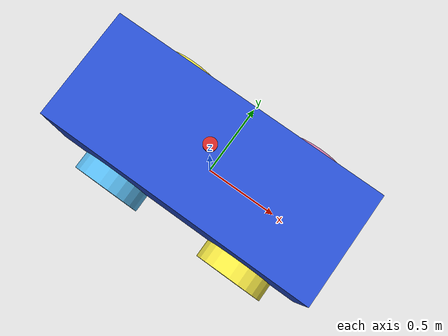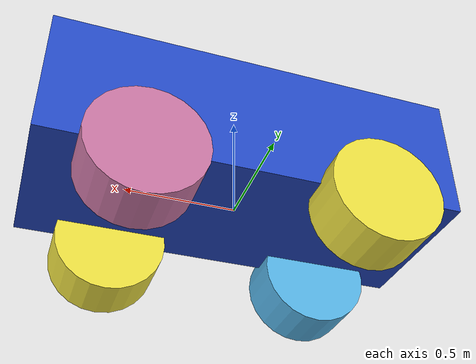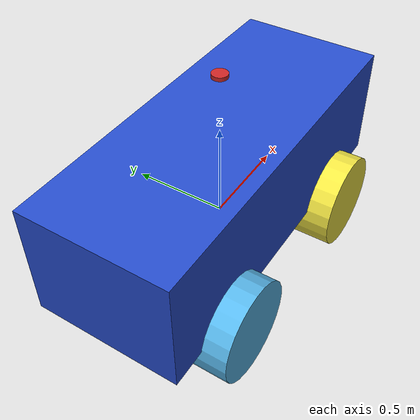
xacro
<?xml version="1.0" ?>
<robot name="tigra" xmlns:xacro="http://www.ros.org/wiki/xacro">

<xacro:property name="length" value="1.85" />
<xacro:property name="width" value="0.75" />
<xacro:property name="heigth" value="0.6" />
<xacro:property name="mass" value="420" />

<xacro:property name="wheel_width" value="0.25" />
<xacro:property name="wheel_radius" value="0.25" />
<xacro:property name="wheel_mass" value="20" />

<xacro:property name="wheelbase" value="1.0" />
<xacro:property name="half_wheelbase" value="${wheelbase/2}" />
<xacro:property name="track_width" value="0.8" />

<xacro:property name="wheel_turn_limit" value="${pi/4}"/>
<xacro:property name="degrees_30" value="${pi/6}"/>
<xacro:property name="mid_wheel_turn_limit" value="${degrees_30}"/>

<xacro:property name="springStiffness" value="125000" />
<xacro:property name="springReference" value="0" />

<xacro:property name="lidar_mass" value="0.1" />
<xacro:property name="lidar_height" value="0.02"/>
<xacro:property name="lidar_radius" value="0.04"/>

<!-- base_footprint - base_link on floor -->
<link name="base_footprint">
</link>
<gazebo reference="base_footprint"/>

<xacro:arg name="pub_tf" default="true" />

<!-- inertia -->
<xacro:macro name="null_inertial">
    <inertial>
      <mass value="1.0"/>
      <inertia ixx="0.01" ixy="0" ixz="0"
               iyy="0.01" iyz="0"
               izz="0.01"/>
    </inertial>
</xacro:macro>

<xacro:macro name="base_inertial"
               params="width length height mass *origin">
    <inertial>
      <xacro:insert_block name="origin"/>
      <mass value="${mass}"/>
      <inertia ixx="${mass * (width * width + height * height) / 12}"
               ixy="0" ixz="0"
               iyy="${mass * (length * length + height * height) / 12}"
               iyz="0"
               izz="${mass * (width * width + length * length) / 12}"/>
    </inertial>
</xacro:macro>

<xacro:macro name="wheel_inertial"
               params="r h mass *origin">
    <inertial>
      <xacro:insert_block name="origin"/>
      <mass value="${mass}"/>
      <inertia ixx="${mass / 12 * (3 * r * r + h * h)}" ixy="0.0" ixz="0.0"
               iyy="${mass / 12 * (3 * r * r + h * h)}" iyz="0.0"
               izz="${mass / 2 * r * r}" />
    </inertial>
</xacro:macro>

<!-- xacro base new -->
<link name="base_link">
    <visual>
     	<origin xyz="0 0 0" rpy="0 0 0" />
        <geometry>
            <box size="${length} ${width} ${heigth}"/>
        </geometry>
        <material name="blue"/>
    </visual>
    <collision name="base_collision">
    	<origin xyz="0 0 0" rpy="0 0 0" />
        <geometry>
            <box size="${length} ${width} ${heigth}"/>
        </geometry>
    </collision>
	<xacro:base_inertial
    width="${width}" length="${length}"
	height="${heigth}" mass="${mass}" >
    <origin xyz="0 0 0" rpy="0 0 0" />
	</xacro:base_inertial>
</link>

<!-- xacro wheel new -->
<xacro:macro name="wheels" params="name">
    <link name="${name}">
      <visual>
        <origin xyz="0 0 0" rpy="${pi/2} 0 0" />
        <geometry>
          <cylinder length="${wheel_width}" radius="${wheel_radius}"/>
        </geometry>
      </visual>
      <collision>
        <origin xyz="0 0 0" rpy="${pi/2} 0 0" />
        <geometry>
          <cylinder length="${wheel_width}" radius="${wheel_radius}"/>
        </geometry>
      </collision>
      <xacro:wheel_inertial
          r="${wheel_radius}" h="${wheel_width}"
          mass="${wheel_mass}" >
	  <origin xyz="0 0 0" rpy="${pi/2} 0 0" />
      </xacro:wheel_inertial>
    </link>
</xacro:macro>

<!-- speed -->
<xacro:macro name="speed_wheel" params="name base_name xyz ">
    <xacro:wheels name="wheel_${name}" />

    <gazebo reference="${name}_spring_joint">
    	<implicitSpringDamper>true</implicitSpringDamper>
    	<springStiffness>${springStiffness}</springStiffness>
    	<springReference>${springReference}</springReference>
    </gazebo>

    <joint name="${name}_spring_joint" type="prismatic">
    <limit lower="-0.1" upper="0.1" effort="0" velocity="0"/>
      <parent link="${base_name}"/>
      <child link="spring1_${name}"/>
	  <dynamics damping="0.0" friction="0.0"/>
	  <axis xyz="0 0 1"/>
    </joint>

    <link name="spring1_${name}">
      <xacro:null_inertial/>
    </link>

    <joint name="${name}_speed_joint" type="continuous">
      <parent link="spring1_${name}"/>
      <child link="wheel_${name}"/>
      <origin xyz="${xyz}" rpy="0 0 0"/>
      <axis xyz="0 1 0"/>
      <limit effort="500.0" velocity="10.0" />
    </joint>
</xacro:macro>

<!-- steer -->
<xacro:macro name="steer_wheel" params="name base_name xyz">
    <xacro:wheels name="wheel_${name}" />

    <gazebo reference="${name}_spring_joint">
    	<implicitSpringDamper>true</implicitSpringDamper>
    	<springStiffness>${springStiffness}</springStiffness>
    	<springReference>${springReference}</springReference>
    </gazebo>

    <joint name="${name}_spring_joint" type="prismatic">
    <limit lower="-0.1" upper="0.1" effort="0" velocity="0"/>
      <parent link="${base_name}"/>
      <child link="spring2_${name}"/>
	  <dynamics damping="0.0" friction="0.0"/>
	  <axis xyz="0 0 1"/>
    </joint>

    <link name="spring2_${name}">
      <xacro:null_inertial/>
    </link>

    <joint name="${name}_steer_joint" type="revolute">
      <limit lower="${-wheel_turn_limit}"
             upper="${wheel_turn_limit}"
             effort="1000" velocity="0"/>
      <parent link="spring2_${name}"/>
      <child link="steer_${name}"/>
      <origin xyz="${xyz}" rpy="0 0 0"/>
      <axis xyz="0 0 1"/>
    </joint>

     <link name="steer_${name}">
      <xacro:null_inertial/>
    </link>

    <joint name="${name}_speed_joint" type="continuous">
      <parent link="steer_${name}"/>
      <child link="wheel_${name}"/>
      <origin xyz="0 0 0" rpy="0 0 0"/>
      <axis xyz="0 1 0"/>
      <limit effort="500" velocity="10.0" />
    </joint>
</xacro:macro>

<!-- lidar -->
 <!-- Hokuyo Laser -->
  <link name="lidar_link">
    <xacro:wheel_inertial
        r="${lidar_radius}" h="${lidar_height}"
        mass="${lidar_mass}" >
      <origin xyz="0 0 0" rpy="0 0 0" />
    </xacro:wheel_inertial>
    <collision>
      <origin xyz="0 0 0" rpy="0 0 0"/>
      <geometry>
        <cylinder length="${lidar_height}" radius="${lidar_radius}"/>
      </geometry>
    </collision>

    <visual>
      <origin xyz="0 0 0" rpy="0 0 0"/>
      <geometry>
        <cylinder length="${lidar_height}" radius="${lidar_radius}"/>
      </geometry>
    </visual>
  </link>

  <gazebo reference="lidar_link">
    <material>Gazebo/Red</material>
    <sensor type="ray" name="head_hokuyo_sensor">
      <pose>0 0 0 0 0 0</pose>
      <visualize>true</visualize>
      <update_rate>40</update_rate>
      <ray>
        <scan>
          <horizontal>
            <samples>720</samples>
            <resolution>1</resolution>
            <min_angle>-3.14</min_angle>
            <max_angle>3.14</max_angle>
          </horizontal>
        </scan>
        <range>
          <min>0.10</min>
          <max>30.0</max>
          <resolution>0.01</resolution>
        </range>
        <noise>
          <type>gaussian</type>
          <mean>0.0</mean>
          <stddev>0.01</stddev>
        </noise>
      </ray>
      <plugin name="gazebo_ros_head_hokuyo_controller" filename="libgazebo_ros_laser.so">
        <topicName>/tigra_description/laser/scan</topicName>
        <frameName>lidar_link</frameName>
      </plugin>
    </sensor>
  </gazebo>

  <joint name="lidar_joint" type="fixed">
    <axis xyz="0 1 0" />
    <origin xyz="0 0 0.55" rpy="0 0 0"/>
    <parent link="base_link"/>
    <child link="lidar_link"/>
  </joint>

  <joint name="base_footprint_2_link" type="fixed">
    <parent link="base_footprint"/>
    <child link="base_link"/>
    <!-- base_footprint - base_link on floor -->
    <origin xyz="0 0 ${wheel_radius}" rpy="0 0 0"/>
  </joint>

<gazebo>
	<plugin name="tigra_interface_plugin" filename="libtigra_interface_plugin.so" >
		<robotName>tigra</robotName>
		<maxSteerRad>${mid_wheel_turn_limit}</maxSteerRad>
		<wheelbase>${wheelbase}</wheelbase>
		<wheelRadius>${wheel_radius}</wheelRadius>
		<trackWidth>${track_width}</trackWidth>
		<wheel_rl_joint_>joint_left_wheel_1_speed_joint</wheel_rl_joint_>
		<wheel_rr_joint_>joint_right_wheel_1_speed_joint</wheel_rr_joint_>
		<wheel_fl_joint_>joint_left_wheel_2_speed_joint</wheel_fl_joint_>
		<wheel_fr_joint_>joint_right_wheel_2_speed_joint</wheel_fr_joint_>
	</plugin>
</gazebo>

<!-- steer_wheel -->
	<xacro:steer_wheel name="joint_right_wheel_1" base_name="base_link" xyz="0.5 -0.375 -0.35" />
	<xacro:steer_wheel name="joint_left_wheel_1" base_name="base_link" xyz="0.5 0.375 -0.35" />
<!-- speed_wheel -->
	<xacro:speed_wheel name="joint_right_wheel_2" base_name="base_link" xyz="-0.5 -0.375 -0.35" />
	<xacro:speed_wheel name="joint_left_wheel_2" base_name="base_link" xyz="-0.5 0.375 -0.35" />
</robot>
